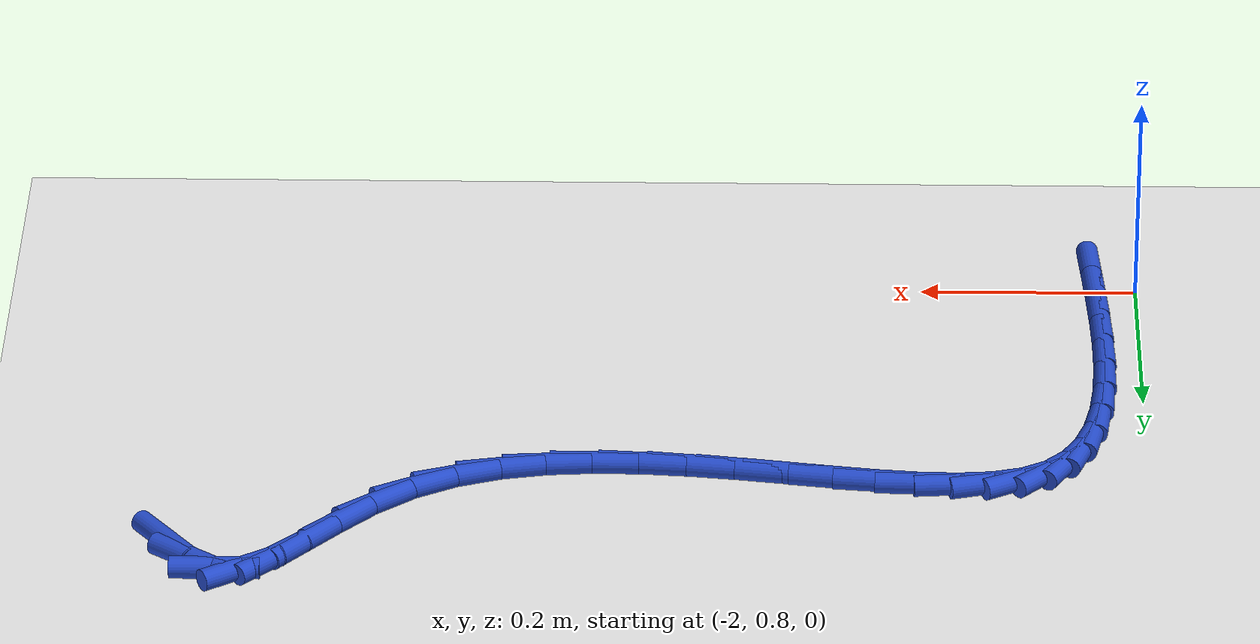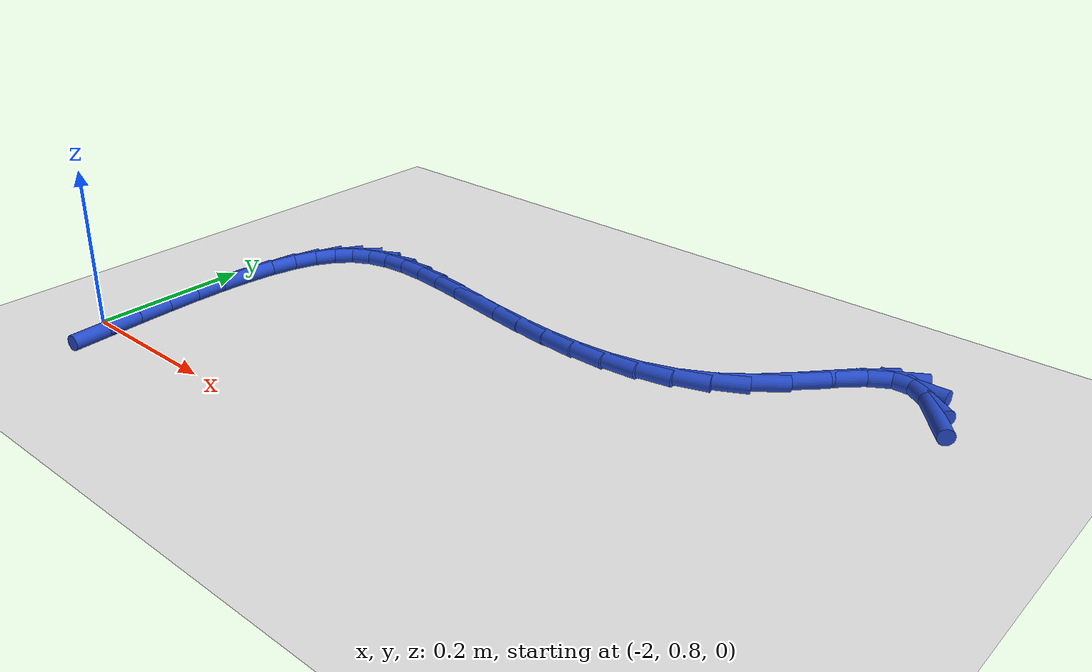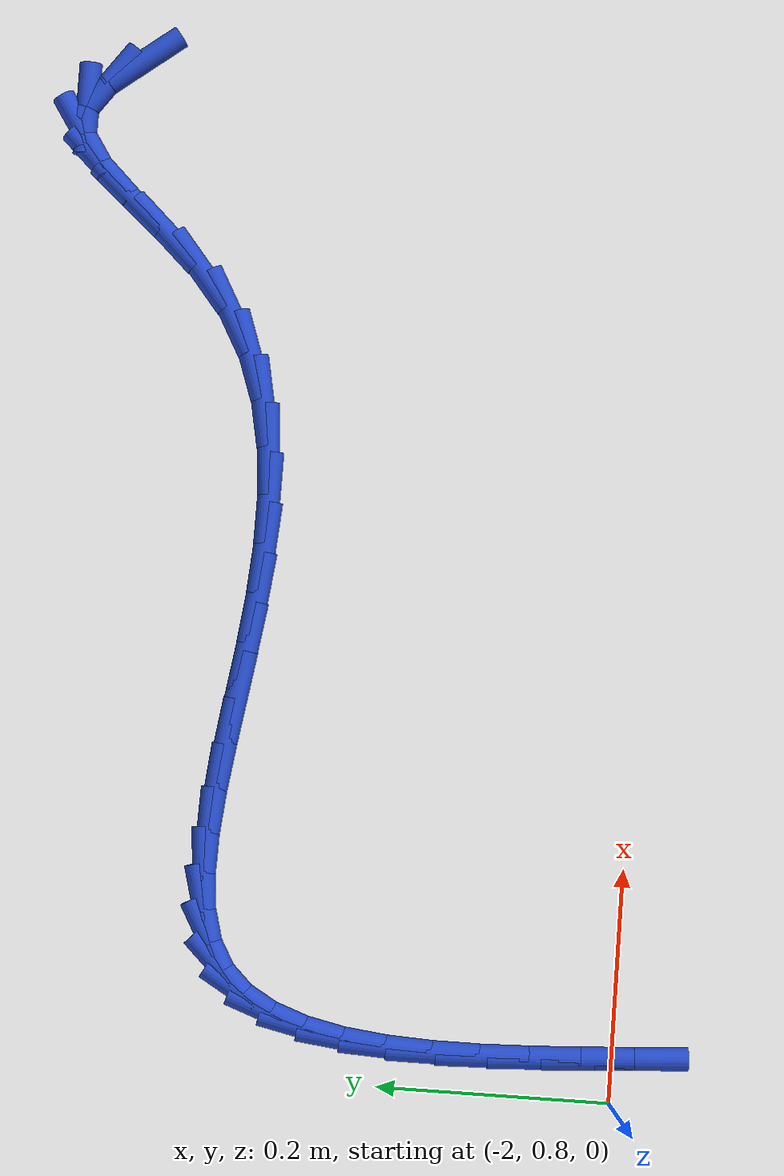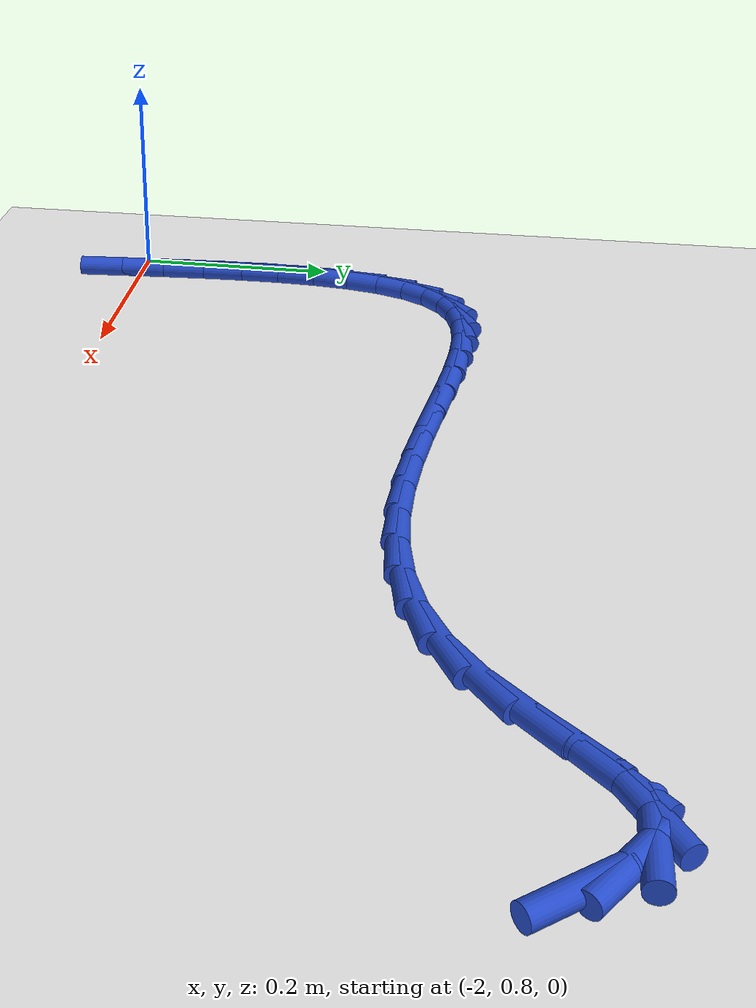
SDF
<sdf version="1.6">
 <world name="default">
  <model name="ground_plane">
   <static>1</static>
   <link name="link">
    <collision name="collision">
     <geometry><plane><normal>0 0 1</normal><size>100 100</size></plane></geometry>
     <surface><friction><ode><mu>100</mu><mu2>50</mu2></ode></friction></surface>
    </collision>
    <visual name="visual">
     <cast_shadows>0</cast_shadows>
     <geometry><plane><normal>0 0 1</normal><size>100 100</size></plane></geometry>
     <material>
      <script><uri>file://media/materials/scripts/gazebo.material</uri><name>Gazebo/WhiteGlow</name></script>
     </material>
    </visual>
   </link>
  </model>
  <model name="line">
   <link name="link_51">
    <pose>-1.1257774155114655 1.266424287867077 0.01 0 1.57 -0.9108318097040208</pose>
    <collision name="collision">
     <geometry><cylinder><radius>0.01</radius><length>0.08</length></cylinder></geometry>
    </collision>
    <visual name="visual">
     <material>
      <script><name>Gazebo/Blue</name><uri>file://media/materials/scripts/gazebo.material</uri></script>
     </material>
     <geometry><cylinder><radius>0.01</radius><length>0.08</length></cylinder></geometry>
    </visual>
   </link>
   <link name="link_52">
    <pose>-1.1483327266017485 1.2954886104119305 0.01 0 1.57 -0.625213165758701</pose>
    <collision name="collision">
     <geometry><cylinder><radius>0.01</radius><length>0.08</length></cylinder></geometry>
    </collision>
    <visual name="visual">
     <material>
      <script><name>Gazebo/Blue</name><uri>file://media/materials/scripts/gazebo.material</uri></script>
     </material>
     <geometry><cylinder><radius>0.01</radius><length>0.08</length></cylinder></geometry>
    </visual>
   </link>
   <link name="link_53">
    <pose>-1.171303007385005 1.3120687570362397 0.01 0 1.57 -0.0005271589317777145</pose>
    <collision name="collision">
     <geometry><cylinder><radius>0.01</radius><length>0.08</length></cylinder></geometry>
    </collision>
    <visual name="visual">
     <material>
      <script><name>Gazebo/Blue</name><uri>file://media/materials/scripts/gazebo.material</uri></script>
     </material>
     <geometry><cylinder><radius>0.01</radius><length>0.08</length></cylinder></geometry>
    </visual>
   </link>
   <link name="link_54">
    <pose>-1.1950995946444856 1.3120813016209214 0.01 0 1.57 0.5793119580593432</pose>
    <collision name="collision">
     <geometry><cylinder><radius>0.01</radius><length>0.08</length></cylinder></geometry>
    </collision>
    <visual name="visual">
     <material>
      <script><name>Gazebo/Blue</name><uri>file://media/materials/scripts/gazebo.material</uri></script>
     </material>
     <geometry><cylinder><radius>0.01</radius><length>0.08</length></cylinder></geometry>
    </visual>
   </link>
   <link name="link_55">
    <pose>-1.2201409086468977 1.2956996368312537 0.01 0 1.57 0.8003394875678993</pose>
    <collision name="collision">
     <geometry><cylinder><radius>0.01</radius><length>0.08</length></cylinder></geometry>
    </collision>
    <visual name="visual">
     <material>
      <script><name>Gazebo/Blue</name><uri>file://media/materials/scripts/gazebo.material</uri></script>
     </material>
     <geometry><cylinder><radius>0.01</radius><length>0.08</length></cylinder></geometry>
    </visual>
   </link>
   <link name="link_56">
    <pose>-1.2468538215229554 1.2681763022928572 0.01 0 1.57 0.8547711497164949</pose>
    <collision name="collision">
     <geometry><cylinder><radius>0.01</radius><length>0.08</length></cylinder></geometry>
    </collision>
    <visual name="visual">
     <material>
      <script><name>Gazebo/Blue</name><uri>file://media/materials/scripts/gazebo.material</uri></script>
     </material>
     <geometry><cylinder><radius>0.01</radius><length>0.08</length></cylinder></geometry>
    </visual>
   </link>
   <link name="link_57">
    <pose>-1.2756657006860972 1.2350614777434699 0.01 0 1.57 0.8135780084928548</pose>
    <collision name="collision">
     <geometry><cylinder><radius>0.01</radius><length>0.08</length></cylinder></geometry>
    </collision>
    <visual name="visual">
     <material>
      <script><name>Gazebo/Blue</name><uri>file://media/materials/scripts/gazebo.material</uri></script>
     </material>
     <geometry><cylinder><radius>0.01</radius><length>0.08</length></cylinder></geometry>
    </visual>
   </link>
   <link name="link_58">
    <pose>-1.3070039135497633 1.201905342920831 0.01 0 1.57 0.6819323054271791</pose>
    <collision name="collision">
     <geometry><cylinder><radius>0.01</radius><length>0.08</length></cylinder></geometry>
    </collision>
    <visual name="visual">
     <material>
      <script><name>Gazebo/Blue</name><uri>file://media/materials/scripts/gazebo.material</uri></script>
     </material>
     <geometry><cylinder><radius>0.01</radius><length>0.08</length></cylinder></geometry>
    </visual>
   </link>
   <link name="link_59">
    <pose>-1.3412706739320068 1.1740854525393079 0.01 0 1.57 0.502146375810371</pose>
    <collision name="collision">
     <geometry><cylinder><radius>0.01</radius><length>0.08</length></cylinder></geometry>
    </collision>
    <visual name="visual">
     <material>
      <script><name>Gazebo/Blue</name><uri>file://media/materials/scripts/gazebo.material</uri></script>
     </material>
     <geometry><cylinder><radius>0.01</radius><length>0.08</length></cylinder></geometry>
    </visual>
   </link>
   <link name="link_60">
    <pose>-1.3783907984816914 1.1537030623896634 0.01 0 1.57 0.3357796123650263</pose>
    <collision name="collision">
     <geometry><cylinder><radius>0.01</radius><length>0.08</length></cylinder></geometry>
    </collision>
    <visual name="visual">
     <material>
      <script><name>Gazebo/Blue</name><uri>file://media/materials/scripts/gazebo.material</uri></script>
     </material>
     <geometry><cylinder><radius>0.01</radius><length>0.08</length></cylinder></geometry>
    </visual>
   </link>
   <link name="link_61">
    <pose>-1.4178619318707952 1.1399278166436846 0.01 0 1.57 0.1936899151199877</pose>
    <collision name="collision">
     <geometry><cylinder><radius>0.01</radius><length>0.08</length></cylinder></geometry>
    </collision>
    <visual name="visual">
     <material>
      <script><name>Gazebo/Blue</name><uri>file://media/materials/scripts/gazebo.material</uri></script>
     </material>
     <geometry><cylinder><radius>0.01</radius><length>0.08</length></cylinder></geometry>
    </visual>
   </link>
   <link name="link_62">
    <pose>-1.4591666491415352 1.1318259390614913 0.01 0 1.57 0.07872519266667492</pose>
    <collision name="collision">
     <geometry><cylinder><radius>0.01</radius><length>0.08</length></cylinder></geometry>
    </collision>
    <visual name="visual">
     <material>
      <script><name>Gazebo/Blue</name><uri>file://media/materials/scripts/gazebo.material</uri></script>
     </material>
     <geometry><cylinder><radius>0.01</radius><length>0.08</length></cylinder></geometry>
    </visual>
   </link>
   <link name="link_63">
    <pose>-1.501787525336128 1.128463653403203 0.01 0 1.57 -0.010214614969075142</pose>
    <collision name="collision">
     <geometry><cylinder><radius>0.01</radius><length>0.08</length></cylinder></geometry>
    </collision>
    <visual name="visual">
     <material>
      <script><name>Gazebo/Blue</name><uri>file://media/materials/scripts/gazebo.material</uri></script>
     </material>
     <geometry><cylinder><radius>0.01</radius><length>0.08</length></cylinder></geometry>
    </visual>
   </link>
   <link name="link_64">
    <pose>-1.5452071354967907 1.1289071834289406 0.01 0 1.57 -0.07572448661729395</pose>
    <collision name="collision">
     <geometry><cylinder><radius>0.01</radius><length>0.08</length></cylinder></geometry>
    </collision>
    <visual name="visual">
     <material>
      <script><name>Gazebo/Blue</name><uri>file://media/materials/scripts/gazebo.material</uri></script>
     </material>
     <geometry><cylinder><radius>0.01</radius><length>0.08</length></cylinder></geometry>
    </visual>
   </link>
   <link name="link_65">
    <pose>-1.5889080546657408 1.1322227528988231 0.01 0 1.57 -0.12029197287766909</pose>
    <collision name="collision">
     <geometry><cylinder><radius>0.01</radius><length>0.08</length></cylinder></geometry>
    </collision>
    <visual name="visual">
     <material>
      <script><name>Gazebo/Blue</name><uri>file://media/materials/scripts/gazebo.material</uri></script>
     </material>
     <geometry><cylinder><radius>0.01</radius><length>0.08</length></cylinder></geometry>
    </visual>
   </link>
   <link name="link_66">
    <pose>-1.6323728578851944 1.137476585572971 0.01 0 1.57 -0.14549088456201398</pose>
    <collision name="collision">
     <geometry><cylinder><radius>0.01</radius><length>0.08</length></cylinder></geometry>
    </collision>
    <visual name="visual">
     <material>
      <script><name>Gazebo/Blue</name><uri>file://media/materials/scripts/gazebo.material</uri></script>
     </material>
     <geometry><cylinder><radius>0.01</radius><length>0.08</length></cylinder></geometry>
    </visual>
   </link>
   <link name="link_67">
    <pose>-1.6750841201973694 1.1437349052115038 0.01 0 1.57 -0.1515553535691179</pose>
    <collision name="collision">
     <geometry><cylinder><radius>0.01</radius><length>0.08</length></cylinder></geometry>
    </collision>
    <visual name="visual">
     <material>
      <script><name>Gazebo/Blue</name><uri>file://media/materials/scripts/gazebo.material</uri></script>
     </material>
     <geometry><cylinder><radius>0.01</radius><length>0.08</length></cylinder></geometry>
    </visual>
   </link>
   <link name="link_68">
    <pose>-1.7165244166444822 1.150063935574542 0.01 0 1.57 -0.13698540591236893</pose>
    <collision name="collision">
     <geometry><cylinder><radius>0.01</radius><length>0.08</length></cylinder></geometry>
    </collision>
    <visual name="visual">
     <material>
      <script><name>Gazebo/Blue</name><uri>file://media/materials/scripts/gazebo.material</uri></script>
     </material>
     <geometry><cylinder><radius>0.01</radius><length>0.08</length></cylinder></geometry>
    </visual>
   </link>
   <link name="link_69">
    <pose>-1.7561763222687492 1.1555299004222048 0.01 0 1.57 -0.09793222679177693</pose>
    <collision name="collision">
     <geometry><cylinder><radius>0.01</radius><length>0.08</length></cylinder></geometry>
    </collision>
    <visual name="visual">
     <material>
      <script><name>Gazebo/Blue</name><uri>file://media/materials/scripts/gazebo.material</uri></script>
     </material>
     <geometry><cylinder><radius>0.01</radius><length>0.08</length></cylinder></geometry>
    </visual>
   </link>
   <link name="link_70">
    <pose>-1.793522412112388 1.1591990235146123 0.01 0 1.57 -0.027178347983233122</pose>
    <collision name="collision">
     <geometry><cylinder><radius>0.01</radius><length>0.08</length></cylinder></geometry>
    </collision>
    <visual name="visual">
     <material>
      <script><name>Gazebo/Blue</name><uri>file://media/materials/scripts/gazebo.material</uri></script>
     </material>
     <geometry><cylinder><radius>0.01</radius><length>0.08</length></cylinder></geometry>
    </visual>
   </link>
   <link name="link_71">
    <pose>-1.8280452612176155 1.1601375286118851 0.01 0 1.57 0.08719649545120903</pose>
    <collision name="collision">
     <geometry><cylinder><radius>0.01</radius><length>0.08</length></cylinder></geometry>
    </collision>
    <visual name="visual">
     <material>
      <script><name>Gazebo/Blue</name><uri>file://media/materials/scripts/gazebo.material</uri></script>
     </material>
     <geometry><cylinder><radius>0.01</radius><length>0.08</length></cylinder></geometry>
    </visual>
   </link>
   <link name="link_72">
    <pose>-1.8592274446266495 1.1574116394741427 0.01 0 1.57 0.2618878592426622</pose>
    <collision name="collision">
     <geometry><cylinder><radius>0.01</radius><length>0.08</length></cylinder></geometry>
    </collision>
    <visual name="visual">
     <material>
      <script><name>Gazebo/Blue</name><uri>file://media/materials/scripts/gazebo.material</uri></script>
     </material>
     <geometry><cylinder><radius>0.01</radius><length>0.08</length></cylinder></geometry>
    </visual>
   </link>
   <link name="link_73">
    <pose>-1.8865515373817052 1.150087579861505 0.01 0 1.57 0.510482784973028</pose>
    <collision name="collision">
     <geometry><cylinder><radius>0.01</radius><length>0.08</length></cylinder></geometry>
    </collision>
    <visual name="visual">
     <material>
      <script><name>Gazebo/Blue</name><uri>file://media/materials/scripts/gazebo.material</uri></script>
     </material>
     <geometry><cylinder><radius>0.01</radius><length>0.08</length></cylinder></geometry>
    </visual>
   </link>
   <link name="link_74">
    <pose>-1.909502429962027 1.1372352469454068 0.01 0 1.57 0.7979305055107412</pose>
    <collision name="collision">
     <geometry><cylinder><radius>0.01</radius><length>0.08</length></cylinder></geometry>
    </collision>
    <visual name="visual">
     <material>
      <script><name>Gazebo/Blue</name><uri>file://media/materials/scripts/gazebo.material</uri></script>
     </material>
     <geometry><cylinder><radius>0.01</radius><length>0.08</length></cylinder></geometry>
    </visual>
   </link>
   <link name="link_75">
    <pose>-1.9278673336695045 1.1184041660272357 0.01 0 1.57 1.0431768070291565</pose>
    <collision name="collision">
     <geometry><cylinder><radius>0.01</radius><length>0.08</length></cylinder></geometry>
    </collision>
    <visual name="visual">
     <material>
      <script><name>Gazebo/Blue</name><uri>file://media/materials/scripts/gazebo.material</uri></script>
     </material>
     <geometry><cylinder><radius>0.01</radius><length>0.08</length></cylinder></geometry>
    </visual>
   </link>
   <link name="link_76">
    <pose>-1.9420329208471954 1.0940948997058946 0.01 0 1.57 1.2276514301835388</pose>
    <collision name="collision">
     <geometry><cylinder><radius>0.01</radius><length>0.08</length></cylinder></geometry>
    </collision>
    <visual name="visual">
     <material>
      <script><name>Gazebo/Blue</name><uri>file://media/materials/scripts/gazebo.material</uri></script>
     </material>
     <geometry><cylinder><radius>0.01</radius><length>0.08</length></cylinder></geometry>
    </visual>
   </link>
   <link name="link_77">
    <pose>-1.9524564876396697 1.0649200543407962 0.01 0 1.57 1.3603970152675255</pose>
    <collision name="collision">
     <geometry><cylinder><radius>0.01</radius><length>0.08</length></cylinder></geometry>
    </collision>
    <visual name="visual">
     <material>
      <script><name>Gazebo/Blue</name><uri>file://media/materials/scripts/gazebo.material</uri></script>
     </material>
     <geometry><cylinder><radius>0.01</radius><length>0.08</length></cylinder></geometry>
    </visual>
   </link>
   <link name="link_78">
    <pose>-1.9595953301914972 1.031492236291354 0.01 0 1.57 1.4550062207638366</pose>
    <collision name="collision">
     <geometry><cylinder><radius>0.01</radius><length>0.08</length></cylinder></geometry>
    </collision>
    <visual name="visual">
     <material>
      <script><name>Gazebo/Blue</name><uri>file://media/materials/scripts/gazebo.material</uri></script>
     </material>
     <geometry><cylinder><radius>0.01</radius><length>0.08</length></cylinder></geometry>
    </visual>
   </link>
   <link name="link_79">
    <pose>-1.9639067446472491 0.9944240519169804 0.01 0 1.57 1.522418172570288</pose>
    <collision name="collision">
     <geometry><cylinder><radius>0.01</radius><length>0.08</length></cylinder></geometry>
    </collision>
    <visual name="visual">
     <material>
      <script><name>Gazebo/Blue</name><uri>file://media/materials/scripts/gazebo.material</uri></script>
     </material>
     <geometry><cylinder><radius>0.01</radius><length>0.08</length></cylinder></geometry>
    </visual>
   </link>
   <link name="link_80">
    <pose>-1.9658480271514955 0.9543281075770894 0.01 0 1.57 1.5701271675767041</pose>
    <collision name="collision">
     <geometry><cylinder><radius>0.01</radius><length>0.08</length></cylinder></geometry>
    </collision>
    <visual name="visual">
     <material>
      <script><name>Gazebo/Blue</name><uri>file://media/materials/scripts/gazebo.material</uri></script>
     </material>
     <geometry><cylinder><radius>0.01</radius><length>0.08</length></cylinder></geometry>
    </visual>
   </link>
   <link name="link_81">
    <pose>-1.9658764738488075 0.911817009631094 0.01 0 1.57 -1.538603084523212</pose>
    <collision name="collision">
     <geometry><cylinder><radius>0.01</radius><length>0.08</length></cylinder></geometry>
    </collision>
    <visual name="visual">
     <material>
      <script><name>Gazebo/Blue</name><uri>file://media/materials/scripts/gazebo.material</uri></script>
     </material>
     <geometry><cylinder><radius>0.01</radius><length>0.08</length></cylinder></geometry>
    </visual>
   </link>
   <link name="link_82">
    <pose>-1.9644493808837544 0.8675033644384074 0.01 0 1.57 -1.517546816096129</pose>
    <collision name="collision">
     <geometry><cylinder><radius>0.01</radius><length>0.08</length></cylinder></geometry>
    </collision>
    <visual name="visual">
     <material>
      <script><name>Gazebo/Blue</name><uri>file://media/materials/scripts/gazebo.material</uri></script>
     </material>
     <geometry><cylinder><radius>0.01</radius><length>0.08</length></cylinder></geometry>
    </visual>
   </link>
   <link name="link_83">
    <pose>-1.9620240444009083 0.8219997783584426 0.01 0 1.57 -1.506513823497956</pose>
    <collision name="collision">
     <geometry><cylinder><radius>0.01</radius><length>0.08</length></cylinder></geometry>
    </collision>
    <visual name="visual">
     <material>
      <script><name>Gazebo/Blue</name><uri>file://media/materials/scripts/gazebo.material</uri></script>
     </material>
     <geometry><cylinder><radius>0.01</radius><length>0.08</length></cylinder></geometry>
    </visual>
   </link>
   <link name="link_84">
    <pose>-1.959057760544838 0.7759188577506135 0.01 0 1.57 -1.504655736415053</pose>
    <collision name="collision">
     <geometry><cylinder><radius>0.01</radius><length>0.08</length></cylinder></geometry>
    </collision>
    <visual name="visual">
     <material>
      <script><name>Gazebo/Blue</name><uri>file://media/materials/scripts/gazebo.material</uri></script>
     </material>
     <geometry><cylinder><radius>0.01</radius><length>0.08</length></cylinder></geometry>
    </visual>
   </link>
  </model>
 </world>
</sdf>
